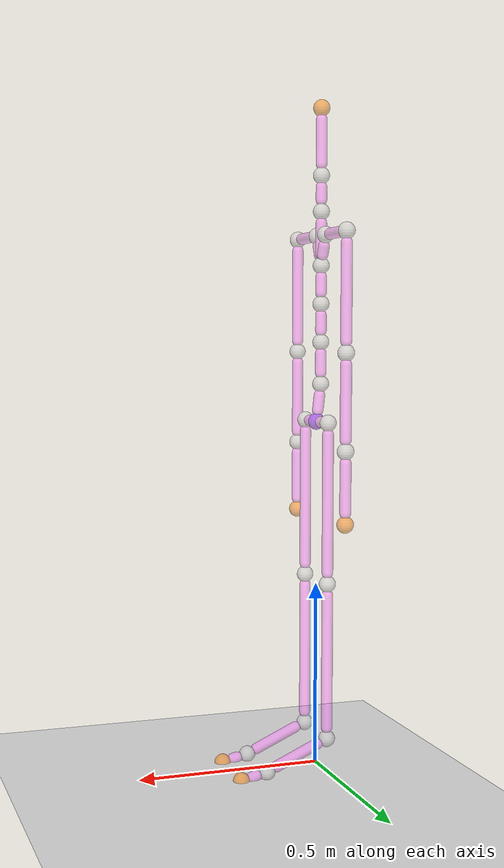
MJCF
<mujoco model="human_skeleton">
  <compiler angle="degree" coordinate="local"/>
  <option gravity="0 0 -9.81"/>
  <worldbody>
    <body name="Hips" pos="0.000000 0.000000 0.945028">
      <joint name="floating_base_joint" type="free" limited="false" actuatorfrclimited="false"/>
      <geom type="sphere" size="0.0225" rgba="0.5 0.0 1.0 0.5"/>
      <geom type="capsule" size="0.015 0.021069312546821473" pos="-0.005639 0.000000 0.050747"  quat="0.4992348808297519 0.0 -0.027650203668389516 0.0"  rgba="1.0 0.5 1.0 0.5"/>
      <body name="Chest" pos="-0.011277 0.000000 0.101494">
        <joint type="ball" name="Chest_joint"/>
        <geom type="sphere" size="0.0225" rgba="0.8 0.8 0.8 0.5"/>
        <geom type="capsule" size="0.015 0.02635263" pos="0.000000 0.000000 0.056343"  quat="0.5 0.0 0.0 0.0"  rgba="1.0 0.5 1.0 0.5"/>
        <body name="Chest2" pos="0.000000 0.000000 0.112685">
          <joint type="ball" name="Chest2_joint"/>
          <geom type="sphere" size="0.0225" rgba="0.8 0.8 0.8 0.5"/>
          <geom type="capsule" size="0.015 0.02145109028290638" pos="-0.000005 0.000000 0.051441"  quat="0.4999999993125477 0.0 -2.6219312118712732e-05 0.0"  rgba="1.0 0.5 1.0 0.5"/>
          <body name="Chest3" pos="-0.000011 0.000000 0.102882">
            <joint type="ball" name="Chest3_joint"/>
            <geom type="sphere" size="0.0225" rgba="0.8 0.8 0.8 0.5"/>
            <geom type="capsule" size="0.015 0.021393660283747794" pos="-0.000005 0.000000 0.051384"  quat="0.49999999930973243 0.0 -2.6272943468971123e-05 0.0"  rgba="1.0 0.5 1.0 0.5"/>
            <body name="Chest4" pos="-0.000011 0.000000 0.102767">
              <joint type="ball" name="Chest4_joint"/>
              <geom type="sphere" size="0.0225" rgba="0.8 0.8 0.8 0.5"/>
              <geom type="capsule" size="0.015 0.041952060000000006" pos="0.000000 0.000000 0.071942"  quat="0.5 0.0 0.0 0.0"  rgba="1.0 0.5 1.0 0.5"/>
              <body name="Neck" pos="0.000000 0.000000 0.143884">
                <joint type="ball" name="Neck_joint"/>
                <geom type="sphere" size="0.0225" rgba="0.8 0.8 0.8 0.5"/>
                <geom type="capsule" size="0.015 0.017849901407570073" pos="0.000012 0.000000 0.047840"  quat="0.499999996322186 0.0 6.064498328755814e-05 0.0"  rgba="1.0 0.5 1.0 0.5"/>
                <body name="Head" pos="0.000023 0.000000 0.095680">
                  <joint type="ball" name="Head_joint"/>
                  <geom type="sphere" size="0.0225" rgba="0.8 0.8 0.8 0.5"/>
                  <geom type="capsule" size="0.015 0.058837055013698535" pos="0.000002 0.000000 0.088827"  quat="0.49999999998072303 0.0 4.390554206203188e-06 0.0"  rgba="1.0 0.5 1.0 0.5"/>
                  <body name="Head_end_site" pos="0.000003 0.000000 0.177654">
                    <joint type="ball" name="Head_end_site_joint"/>
                    <geom type="sphere" size="0.0225" rgba="1.0 0.5 0.0 0.5"/>
                  </body>
                </body>
              </body>
              <geom type="capsule" size="0.015 0.013274958304103909" pos="0.000000 -0.015662 0.040330"  quat="0.4914484939204371 0.09207810718805039 0.0 0.0"  rgba="1.0 0.5 1.0 0.5"/>
              <body name="RightCollar" pos="0.000000 -0.031325 0.080661">
                <joint type="ball" name="RightCollar_joint"/>
                <geom type="sphere" size="0.0225" rgba="0.8 0.8 0.8 0.5"/>
                <geom type="capsule" size="0.015 0.043236635" pos="0.000000 -0.073227 0.000000"  quat="0.3535533905932738 0.35355339059327373 0.0 0.0"  rgba="1.0 0.5 1.0 0.5"/>
                <body name="RightShoulder" pos="0.000000 -0.146453 0.000000">
                  <joint type="ball" name="RightShoulder_joint"/>
                  <geom type="sphere" size="0.0225" rgba="0.8 0.8 0.8 0.5"/>
                  <geom type="capsule" size="0.015 0.12662515500000002" pos="0.000000 0.000000 -0.156615"  quat="3.061616997868383e-17 0.0 0.5 0.0"  rgba="1.0 0.5 1.0 0.5"/>
                  <body name="RightElbow" pos="0.000000 0.000000 -0.313230">
                    <joint type="ball" name="RightElbow_joint"/>
                    <geom type="sphere" size="0.0225" rgba="0.8 0.8 0.8 0.5"/>
                    <geom type="capsule" size="0.015 0.09806468" pos="0.000000 0.000000 -0.128055"  quat="3.061616997868383e-17 0.0 0.5 0.0"  rgba="1.0 0.5 1.0 0.5"/>
                    <body name="RightWrist" pos="0.000000 0.000000 -0.256109">
                      <joint type="ball" name="RightWrist_joint"/>
                      <geom type="sphere" size="0.0225" rgba="0.8 0.8 0.8 0.5"/>
                      <geom type="capsule" size="0.015 0.065701095" pos="0.000000 0.000000 -0.095691"  quat="3.061616997868383e-17 0.0 0.5 0.0"  rgba="1.0 0.5 1.0 0.5"/>
                      <body name="RightWrist_end_site" pos="0.000000 0.000000 -0.191382">
                        <joint type="ball" name="RightWrist_end_site_joint"/>
                        <geom type="sphere" size="0.0225" rgba="1.0 0.5 0.0 0.5"/>
                      </body>
                    </body>
                  </body>
                </body>
              </body>
              <geom type="capsule" size="0.015 0.013274958304103909" pos="0.000000 0.015662 0.040330"  quat="0.4914484939204371 -0.09207810718805039 0.0 0.0"  rgba="1.0 0.5 1.0 0.5"/>
              <body name="LeftCollar" pos="0.000000 0.031325 0.080661">
                <joint type="ball" name="LeftCollar_joint"/>
                <geom type="sphere" size="0.0225" rgba="0.8 0.8 0.8 0.5"/>
                <geom type="capsule" size="0.015 0.043236635" pos="0.000000 0.073227 0.000000"  quat="0.3535533905932738 -0.35355339059327373 0.0 0.0"  rgba="1.0 0.5 1.0 0.5"/>
                <body name="LeftShoulder" pos="0.000000 0.146453 0.000000">
                  <joint type="ball" name="LeftShoulder_joint"/>
                  <geom type="sphere" size="0.0225" rgba="0.8 0.8 0.8 0.5"/>
                  <geom type="capsule" size="0.015 0.12662515500000002" pos="0.000000 0.000000 -0.156615"  quat="3.061616997868383e-17 0.0 0.5 0.0"  rgba="1.0 0.5 1.0 0.5"/>
                  <body name="LeftElbow" pos="0.000000 0.000000 -0.313230">
                    <joint type="ball" name="LeftElbow_joint"/>
                    <geom type="sphere" size="0.0225" rgba="0.8 0.8 0.8 0.5"/>
                    <geom type="capsule" size="0.015 0.09806468" pos="0.000000 0.000000 -0.128055"  quat="3.061616997868383e-17 0.0 0.5 0.0"  rgba="1.0 0.5 1.0 0.5"/>
                    <body name="LeftWrist" pos="0.000000 0.000000 -0.256109">
                      <joint type="ball" name="LeftWrist_joint"/>
                      <geom type="sphere" size="0.0225" rgba="0.8 0.8 0.8 0.5"/>
                      <geom type="capsule" size="0.015 0.065701095" pos="0.000000 0.000000 -0.095691"  quat="3.061616997868383e-17 0.0 0.5 0.0"  rgba="1.0 0.5 1.0 0.5"/>
                      <body name="LeftWrist_end_site" pos="0.000000 0.000000 -0.191382">
                        <joint type="ball" name="LeftWrist_end_site_joint"/>
                        <geom type="sphere" size="0.0225" rgba="1.0 0.5 0.0 0.5"/>
                      </body>
                    </body>
                  </body>
                </body>
              </body>
            </body>
          </body>
        </body>
      </body>
      <geom type="capsule" size="0.015 0.011755369335787715" pos="-0.000002 -0.041745 0.000019"  quat="0.35363345860758433 0.3534733039948807 -1.7781469592833824e-05 0.0"  rgba="1.0 0.5 1.0 0.5"/>
      <body name="RightHip" pos="-0.000004 -0.083491 0.000038">
        <joint type="ball" name="RightHip_joint"/>
        <geom type="sphere" size="0.0225" rgba="0.8 0.8 0.8 0.5"/>
        <geom type="capsule" size="0.015 0.18626399000375862" pos="-0.000001 0.000000 -0.216254"  quat="1.4739612434548187e-06 0.0 -0.49999999999782746 0.0"  rgba="1.0 0.5 1.0 0.5"/>
        <body name="RightKnee" pos="-0.000003 0.000000 -0.432508">
          <joint type="ball" name="RightKnee_joint"/>
          <geom type="sphere" size="0.0225" rgba="0.8 0.8 0.8 0.5"/>
          <geom type="capsule" size="0.015 0.18122859001089164" pos="-0.000002 0.000000 -0.211219"  quat="2.538839029205372e-06 0.0 -0.4999999999935543 0.0"  rgba="1.0 0.5 1.0 0.5"/>
          <body name="RightAnkle" pos="-0.000004 0.000000 -0.422437">
            <joint type="ball" name="RightAnkle_joint"/>
            <geom type="sphere" size="0.0225" rgba="0.8 0.8 0.8 0.5"/>
            <geom type="capsule" size="0.015 0.06348961756579678" pos="0.085560 0.000000 -0.037656"  quat="0.27321474324144684 0.0 0.41875255709727943 0.0"  rgba="1.0 0.5 1.0 0.5"/>
            <body name="RightToe" pos="0.171119 0.000000 -0.075313">
              <joint type="ball" name="RightToe_joint"/>
              <geom type="sphere" size="0.0225" rgba="0.8 0.8 0.8 0.5"/>
              <geom type="capsule" size="0.015 0.0066469745777148585" pos="0.035708 0.000000 -0.008197"  quat="0.3115037238051117 0.0 0.3911079519206285 0.0"  rgba="1.0 0.5 1.0 0.5"/>
              <body name="RightToe_end_site" pos="0.071417 0.000000 -0.016393">
                <joint type="ball" name="RightToe_end_site_joint"/>
                <geom type="sphere" size="0.0225" rgba="1.0 0.5 0.0 0.5"/>
              </body>
            </body>
          </body>
        </body>
      </body>
      <geom type="capsule" size="0.015 0.011755365682977022" pos="-0.000001 0.041745 0.000008"  quat="0.3535851701561731 -0.35352160810285427 -7.071217194193493e-06 0.0"  rgba="1.0 0.5 1.0 0.5"/>
      <body name="LeftHip" pos="-0.000002 0.083491 0.000015">
        <joint type="ball" name="LeftHip_joint"/>
        <geom type="sphere" size="0.0225" rgba="0.8 0.8 0.8 0.5"/>
        <geom type="capsule" size="0.015 0.18626399000375862" pos="-0.000001 0.000000 -0.216254"  quat="1.4739612434548187e-06 0.0 -0.49999999999782746 0.0"  rgba="1.0 0.5 1.0 0.5"/>
        <body name="LeftKnee" pos="-0.000003 0.000000 -0.432508">
          <joint type="ball" name="LeftKnee_joint"/>
          <geom type="sphere" size="0.0225" rgba="0.8 0.8 0.8 0.5"/>
          <geom type="capsule" size="0.015 0.18122859001089164" pos="-0.000002 0.000000 -0.211219"  quat="2.538839029205372e-06 0.0 -0.4999999999935543 0.0"  rgba="1.0 0.5 1.0 0.5"/>
          <body name="LeftAnkle" pos="-0.000004 0.000000 -0.422437">
            <joint type="ball" name="LeftAnkle_joint"/>
            <geom type="sphere" size="0.0225" rgba="0.8 0.8 0.8 0.5"/>
            <geom type="capsule" size="0.015 0.06348961756579678" pos="0.085560 0.000000 -0.037656"  quat="0.27321474324144684 0.0 0.41875255709727943 0.0"  rgba="1.0 0.5 1.0 0.5"/>
            <body name="LeftToe" pos="0.171119 0.000000 -0.075313">
              <joint type="ball" name="LeftToe_joint"/>
              <geom type="sphere" size="0.0225" rgba="0.8 0.8 0.8 0.5"/>
              <geom type="capsule" size="0.015 0.0066469745777148585" pos="0.035708 0.000000 -0.008197"  quat="0.3115037238051117 0.0 0.3911079519206285 0.0"  rgba="1.0 0.5 1.0 0.5"/>
              <body name="LeftToe_end_site" pos="0.071417 0.000000 -0.016393">
                <joint type="ball" name="LeftToe_end_site_joint"/>
                <geom type="sphere" size="0.0225" rgba="1.0 0.5 0.0 0.5"/>
              </body>
            </body>
          </body>
        </body>
      </body>
    </body>
  </worldbody>

    <!-- setup scene -->
  <statistic center="1.0 0.7 1.0" extent="0.8"/>
    <visual>
        <headlight diffuse="0.6 0.6 0.6" ambient="0.1 0.1 0.1" specular="0.9 0.9 0.9"/>
        <rgba haze="0.15 0.25 0.35 1"/>
        <global azimuth="-140" elevation="-20" offwidth="2080" offheight="1170"/>
    </visual>
    <asset>
        <texture type="skybox" builtin="gradient" rgb1="1 1 1" rgb2="1 1 1" width="800" height="800"/>
    <texture type="2d" name="groundplane" builtin="checker" mark="edge" rgb1="1 1 1" rgb2="1 1 1" markrgb="0 0 0"
      width="300" height="300"/>
    <material name="groundplane" texture="groundplane" texuniform="true" texrepeat="5 5" reflectance="0"/>
        <texture type="skybox" builtin="gradient" rgb1=".4 .5 .6" rgb2="0 0 0" width="100" height="100"/>
        <texture builtin="flat" height="1278" mark="cross" markrgb="1 1 1" name="texgeom" random="0.01" rgb1="0.8 0.6 0.4" rgb2="0.8 0.6 0.4" type="cube" width="127"/>
        <texture name="texplane" builtin="checker" height="512" width="512" rgb1=".2 .3 .4" rgb2=".1 .15 .2" type="2d" />
        <material name="MatPlane" reflectance="0.5" shininess="0.01" specular="0.1" texrepeat="1 1" texture="texplane" texuniform="true" />
        <material name="geom" texture="texgeom" texuniform="true"/>
    </asset>
    <worldbody>
        <geom name="floor" size="0 0 0.01" type="plane" material="groundplane" contype="1" conaffinity="0" priority="1"
      friction="0.6" condim="3"/>

          <light diffuse=".5 .5 .5" pos="-3 -3 5" dir="3 3 -5" castshadow="true"/>

    </worldbody>

</mujoco>
